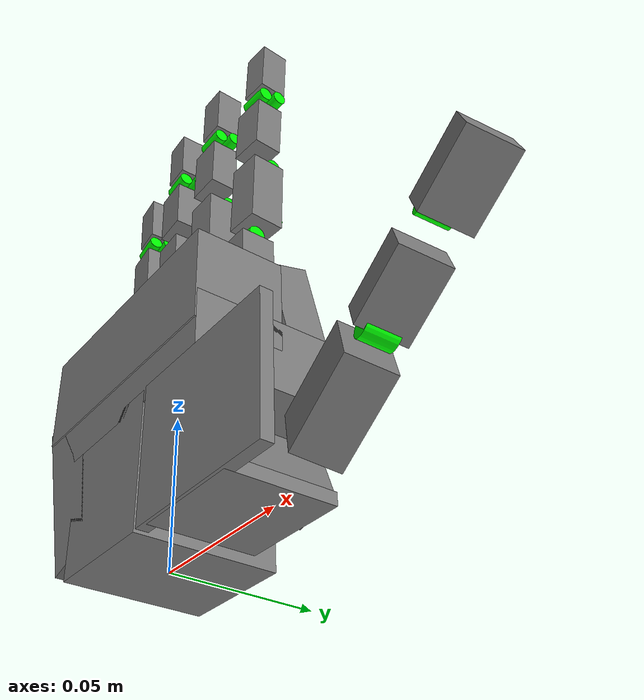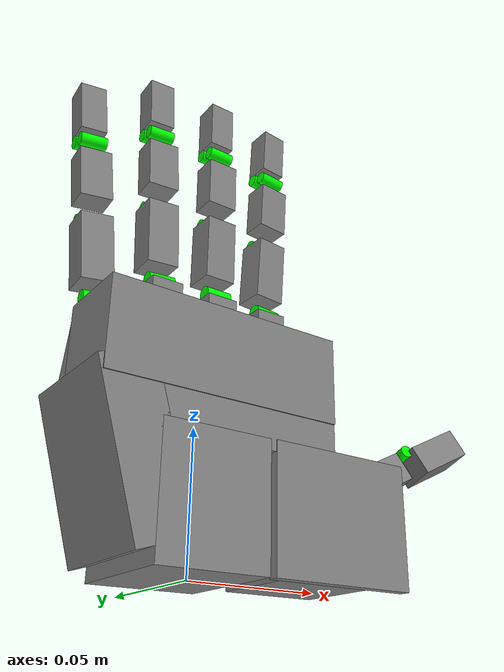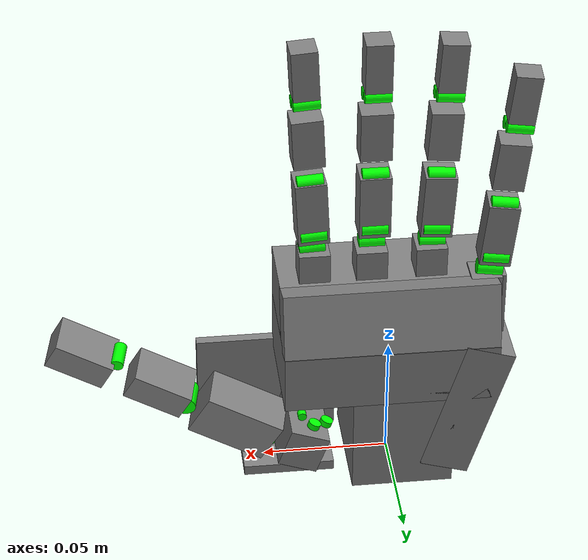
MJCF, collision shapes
<?xml version="1.0" ?>
<mujoco model="aeropiper_left_hand">

  <compiler angle="radian" meshdir="../robots/aeropiper/assets"/>

  <default>

    <default class="left_piper">

      <joint frictionloss="2.0" armature="0.005" damping="20.0"/>

      <position inheritrange="1" forcerange="-100 100" kp="100"/>

    </default>

    <default class="left_finger">

      <joint frictionloss="0" armature="0.005" damping="20.0" type="slide"/>

      <position inheritrange="1" forcerange="-10 10" kp="100"/>

    </default>

    <default class="left_visual">

      <joint frictionloss="2.0" armature="0.005" damping="20.0"/>

      <position inheritrange="1" forcerange="-100 100" kp="100"/>

      <geom group="2" type="mesh" contype="0" conaffinity="0" density="0" name="auto_geom_0"/>

    </default>

    <default class="left_collision">

      <joint frictionloss="2.0" armature="0.005" damping="20.0"/>

      <position inheritrange="1" forcerange="-100 100" kp="100"/>

      <geom group="3" type="capsule" name="auto_geom_1"/>

    </default>

    <default class="left_tetheria_rh">

      <geom group="3" friction="1.2 0.05 0.005" solref="0.005 1" solimp="0.95 0.99 0.0005" name="auto_geom_2"/>

      <joint axis="0 0 -1" damping="0.02" armature="0.001559127" frictionloss="0.02"/>

    </default>

    <default class="left_hand_visual">

      <geom group="2" friction="1.2 0.05 0.005" solref="0.005 1" solimp="0.95 0.99 0.0005" type="mesh" contype="0" conaffinity="0" density="0" material="left_white" name="auto_geom_3"/>

      <joint axis="0 0 -1" damping="0.02" armature="0.001559127" frictionloss="0.02"/>

    </default>

    <default class="left_tip">

      <geom group="3" friction="0.7 0.05 0.0002" solref="0.005 1" solimp="0.95 0.99 0.0005" size="0.01 0.012 0.016" pos="-0.0012969 -0.0335524 0.0145207" quat="0.703552 0.709596 -0.0292107 -0.0252203" type="box" rgba=".5 .5 .5 .3" name="auto_geom_4"/>

      <joint axis="0 0 -1" damping="0.02" armature="0.001559127" frictionloss="0.02"/>

    </default>

    <default class="left_thumb_tip">

      <geom group="3" friction="0.7 0.05 0.0002" solref="0.005 1" solimp="0.95 0.99 0.0005" size="0.01 0.012 0.016" pos="-0.00127744 -0.0455619 -0.0144774" quat="0.708101 0.705072 -0.0294902 -0.024426" type="box" rgba=".5 .5 .5 .3" name="auto_geom_5"/>

      <joint axis="0 0 -1" damping="0.02" armature="0.001559127" frictionloss="0.02"/>

    </default>

    <default class="left_rot">

      <geom group="3" friction="1.2 0.05 0.005" solref="0.005 1" solimp="0.95 0.99 0.0005" name="auto_geom_6"/>

      <joint axis="0 0 -1" damping="0.1" armature="0.001559127" frictionloss="0.02" range="0 1.5708"/>

      <position ctrlrange="-0.1 1.58"/>

    </default>

    <default class="left_pip">

      <geom group="3" friction="1.2 0.05 0.005" solref="0.005 1" solimp="0.95 0.99 0.0005" name="auto_geom_7"/>

      <joint axis="0 0 -1" damping="0.05" armature="0.001559127" frictionloss="0.02" range="0 1.5708"/>

      <position ctrlrange="-0.1 1.58"/>

    </default>

    <default class="left_dip">

      <geom group="3" friction="1.2 0.05 0.005" solref="0.005 1" solimp="0.95 0.99 0.0005" name="auto_geom_8"/>

      <joint axis="0 0 -1" damping="0.05" armature="0.001559127" frictionloss="0.02" range="0 1.5708"/>

      <position ctrlrange="-0.1 1.58"/>

    </default>

    <default class="left_thumb_cmc">

      <geom group="3" friction="1.2 0.05 0.005" solref="0.005 1" solimp="0.95 0.99 0.0005" name="auto_geom_9"/>

      <joint axis="0 0 -1" damping="0.02" armature="0.001559127" frictionloss="0.02" range="0 1.7453"/>

      <position ctrlrange="-0.1 1.75"/>

    </default>

    <default class="left_thumb_axl">

      <geom group="3" friction="1.2 0.05 0.005" solref="0.005 1" solimp="0.95 0.99 0.0005" name="auto_geom_10"/>

      <joint axis="0 0 -1" damping="0.02" armature="0.001559127" frictionloss="0.02" range="0 1.4"/>

      <position ctrlrange="-0.1 1.5"/>

    </default>

    <default class="left_thumb_mcp">

      <geom group="3" friction="1.2 0.05 0.005" solref="0.005 1" solimp="0.95 0.99 0.0005" name="auto_geom_11"/>

      <joint axis="0 0 -1" damping="0.02" armature="0.001559127" frictionloss="0.02" range="0 1.2217"/>

      <position ctrlrange="-0.1 1.3"/>

    </default>

    <default class="left_thumb_ipl">

      <geom group="3" friction="1.2 0.05 0.005" solref="0.005 1" solimp="0.95 0.99 0.0005" name="auto_geom_12"/>

      <joint axis="0 0 -1" damping="0.02" armature="0.001559127" frictionloss="0.02" range="0 1.2217"/>

      <position ctrlrange="-0.1 1.3"/>

    </default>

    <default class="left_cmc_spring">

      <geom group="3" friction="1.2 0.05 0.005" solref="0.005 1" solimp="0.95 0.99 0.0005" name="auto_geom_13"/>

      <joint axis="0 0 -1" damping="0.02" armature="0.001559127" frictionloss="0.02"/>

      <tendon stiffness="1897" springlength="0.013" width="0.001" rgba="0 0.5 0.5 1" group="2"/>

    </default>

    <default class="left_distal_spring">

      <geom group="3" friction="1.2 0.05 0.005" solref="0.005 1" solimp="0.95 0.99 0.0005" name="auto_geom_14"/>

      <joint axis="0 0 -1" damping="0.02" armature="0.001559127" frictionloss="0.02"/>

      <tendon stiffness="4000" springlength="0.021336" width="0.001" rgba="0.5 0.5 0 1" group="2"/>

    </default>

    <default class="left_mcp_spring">

      <geom group="3" friction="1.2 0.05 0.005" solref="0.005 1" solimp="0.95 0.99 0.0005" name="auto_geom_15"/>

      <joint axis="0 0 -1" damping="0.02" armature="0.001559127" frictionloss="0.02"/>

      <tendon stiffness="352" springlength="0.011376" width="0.001" rgba="0 0.5 0.5 1" group="2"/>

    </default>

    <default class="left_mcp_tendon">

      <geom group="3" friction="1.2 0.05 0.005" solref="0.005 1" solimp="0.95 0.99 0.0005" name="auto_geom_16"/>

      <joint axis="0 0 -1" damping="0.02" armature="0.001559127" frictionloss="0.02"/>

      <tendon width="0.001" rgba="1 0 0 1" group="2"/>

    </default>

    <default class="left_flex_tendon">

      <geom group="3" friction="1.2 0.05 0.005" solref="0.005 1" solimp="0.95 0.99 0.0005" name="auto_geom_17"/>

      <joint axis="0 0 -1" damping="0.02" armature="0.001559127" frictionloss="0.02"/>

      <tendon width="0.001" rgba="0 0 1 1" group="2"/>

    </default>

  </default>

  <asset>

    <material name="left_gray_mat" rgba="0.59 0.59 0.59 1"/>

    <material name="left_light_gray_mat" rgba="0.98 0.98 0.98 1"/>

    <material name="left_light_medium_gray_mat" rgba="0.85 0.85 0.85 1"/>

    <material name="left_dark_gray_mat" rgba="0.086 0.086 0.086 1"/>

    <material name="left_darker_gray_mat" rgba="0.14 0.14 0.14 1"/>

    <material name="left_white_mat" rgba="1 1 1 1"/>

    <material name="left_red_mat" rgba="0.82 0.15 0.15 1"/>

    <material name="left_black_mat" rgba="0 0 0 1"/>

    <material name="left_light_blue" rgba="0.79 0.82 0.93 1"/>

    <mesh file="../robots/aeropiper/assets/link2_0.obj" name="left_link2_0"/>

    <mesh file="../robots/aeropiper/assets/link2_1.obj" name="left_link2_1"/>

    <mesh file="../robots/aeropiper/assets/link2_2.obj" name="left_link2_2"/>

    <mesh file="../robots/aeropiper/assets/link2_3.obj" name="left_link2_3"/>

    <mesh file="../robots/aeropiper/assets/link2_4.obj" name="left_link2_4"/>

    <mesh file="../robots/aeropiper/assets/link2_5.obj" name="left_link2_5"/>

    <mesh file="../robots/aeropiper/assets/link2_6.obj" name="left_link2_6"/>

    <mesh file="../robots/aeropiper/assets/link2_7.obj" name="left_link2_7"/>

    <mesh file="../robots/aeropiper/assets/link2_8.obj" name="left_link2_8"/>

    <mesh file="../robots/aeropiper/assets/link2_9.obj" name="left_link2_9"/>

    <mesh file="../robots/aeropiper/assets/link2_10.obj" name="left_link2_10"/>

    <mesh file="../robots/aeropiper/assets/link2_11.obj" name="left_link2_11"/>

    <mesh file="../robots/aeropiper/assets/link2_12.obj" name="left_link2_12"/>

    <mesh file="../robots/aeropiper/assets/link2_13.obj" name="left_link2_13"/>

    <mesh file="../robots/aeropiper/assets/link2_14.obj" name="left_link2_14"/>

    <mesh file="../robots/aeropiper/assets/link2_15.obj" name="left_link2_15"/>

    <mesh file="../robots/aeropiper/assets/link2_16.obj" name="left_link2_16"/>

    <mesh file="../robots/aeropiper/assets/link2_17.obj" name="left_link2_17"/>

    <mesh file="../robots/aeropiper/assets/link2_18.obj" name="left_link2_18"/>

    <mesh file="../robots/aeropiper/assets/link2_19.obj" name="left_link2_19"/>

    <mesh file="../robots/aeropiper/assets/link2_20.obj" name="left_link2_20"/>

    <mesh file="../robots/aeropiper/assets/link2_21.obj" name="left_link2_21"/>

    <mesh file="../robots/aeropiper/assets/link2_22.obj" name="left_link2_22"/>

    <mesh file="../robots/aeropiper/assets/link2_23.obj" name="left_link2_23"/>

    <mesh file="../robots/aeropiper/assets/link2_24.obj" name="left_link2_24"/>

    <mesh file="../robots/aeropiper/assets/link2_25.obj" name="left_link2_25"/>

    <mesh file="../robots/aeropiper/assets/link2_26.obj" name="left_link2_26"/>

    <mesh file="../robots/aeropiper/assets/link2_27.obj" name="left_link2_27"/>

    <mesh file="../robots/aeropiper/assets/link2_28.obj" name="left_link2_28"/>

    <mesh file="../robots/aeropiper/assets/link2_29.obj" name="left_link2_29"/>

    <mesh file="../robots/aeropiper/assets/link2_30.obj" name="left_link2_30"/>

    <mesh file="../robots/aeropiper/assets/link2_31.obj" name="left_link2_31"/>

    <mesh file="../robots/aeropiper/assets/link3_0.obj" name="left_link3_0"/>

    <mesh file="../robots/aeropiper/assets/link3_1.obj" name="left_link3_1"/>

    <mesh file="../robots/aeropiper/assets/link3_2.obj" name="left_link3_2"/>

    <mesh file="../robots/aeropiper/assets/link3_3.obj" name="left_link3_3"/>

    <mesh file="../robots/aeropiper/assets/link3_4.obj" name="left_link3_4"/>

    <mesh file="../robots/aeropiper/assets/link3_5.obj" name="left_link3_5"/>

    <mesh file="../robots/aeropiper/assets/link3_7.obj" name="left_link3_7"/>

    <mesh file="../robots/aeropiper/assets/link3_8.obj" name="left_link3_8"/>

    <mesh file="../robots/aeropiper/assets/link3_9.obj" name="left_link3_9"/>

    <mesh file="../robots/aeropiper/assets/link3_10.obj" name="left_link3_10"/>

    <mesh file="../robots/aeropiper/assets/link3_11.obj" name="left_link3_11"/>

    <mesh file="../robots/aeropiper/assets/link3_12.obj" name="left_link3_12"/>

    <mesh file="../robots/aeropiper/assets/link3_13.obj" name="left_link3_13"/>

    <mesh file="../robots/aeropiper/assets/link3_14.obj" name="left_link3_14"/>

    <mesh file="../robots/aeropiper/assets/link3_15.obj" name="left_link3_15"/>

    <mesh file="../robots/aeropiper/assets/link3_16.obj" name="left_link3_16"/>

    <mesh file="../robots/aeropiper/assets/link3_17.obj" name="left_link3_17"/>

    <mesh file="../robots/aeropiper/assets/link3_18.obj" name="left_link3_18"/>

    <mesh file="../robots/aeropiper/assets/link3_19.obj" name="left_link3_19"/>

    <mesh file="../robots/aeropiper/assets/link3_20.obj" name="left_link3_20"/>

    <mesh file="../robots/aeropiper/assets/link3_21.obj" name="left_link3_21"/>

    <mesh file="../robots/aeropiper/assets/link3_22.obj" name="left_link3_22"/>

    <mesh file="../robots/aeropiper/assets/link3_23.obj" name="left_link3_23"/>

    <mesh file="../robots/aeropiper/assets/link3_24.obj" name="left_link3_24"/>

    <mesh file="../robots/aeropiper/assets/link3_25.obj" name="left_link3_25"/>

    <mesh file="../robots/aeropiper/assets/link3_26.obj" name="left_link3_26"/>

    <mesh file="../robots/aeropiper/assets/link3_27.obj" name="left_link3_27"/>

    <mesh file="../robots/aeropiper/assets/link3_28.obj" name="left_link3_28"/>

    <mesh file="../robots/aeropiper/assets/link4_2.obj" name="left_link4_2"/>

    <mesh file="../robots/aeropiper/assets/link4_3.obj" name="left_link4_3"/>

    <mesh file="../robots/aeropiper/assets/link4_4.obj" name="left_link4_4"/>

    <mesh file="../robots/aeropiper/assets/link4_5.obj" name="left_link4_5"/>

    <mesh file="../robots/aeropiper/assets/link4_6.obj" name="left_link4_6"/>

    <mesh file="../robots/aeropiper/assets/link5_2.obj" name="left_link5_2"/>

    <mesh file="../robots/aeropiper/assets/link5_3.obj" name="left_link5_3"/>

    <mesh file="../robots/aeropiper/assets/link5_4.obj" name="left_link5_4"/>

    <mesh file="../robots/aeropiper/assets/link5_5.obj" name="left_link5_5"/>

    <mesh file="../robots/aeropiper/assets/link5_6.obj" name="left_link5_6"/>

    <mesh file="../robots/aeropiper/assets/link5_7.obj" name="left_link5_7"/>

    <mesh file="../robots/aeropiper/assets/link5_8.obj" name="left_link5_8"/>

    <mesh name="left_base_link" file="../robots/aeropiper/assets/base_link.stl"/>

    <mesh name="left_link1" file="../robots/aeropiper/assets/link1.stl"/>

    <mesh name="left_link2" file="../robots/aeropiper/assets/link2.stl"/>

    <mesh name="left_link2_gray" file="../robots/aeropiper/assets/link2_gray.stl"/>

    <mesh name="left_link3" file="../robots/aeropiper/assets/link3.stl"/>

    <mesh name="left_link4" file="../robots/aeropiper/assets/link4.stl"/>

    <mesh name="left_link5" file="../robots/aeropiper/assets/link5.stl"/>

    <mesh file="../robots/aeropiper/assets/link6.stl" name="left_link6"/>

    <material name="left_black" rgba="0.2 0.2 0.2 1"/>

    <material name="left_gray" rgba="0.5 0.5 0.5 1"/>

    <material name="left_white" rgba="0.7 0.7 0.7 1"/>

    <mesh name="left_tetheria_mount" file="../robots/aeropiper/assets/left_palm_mount_link.STL"/>

    <mesh name="left_frame_link" content_type="model/stl" file="../robots/aeropiper/assets/base_link.STL"/>

    <mesh name="left_index_f_link" content_type="model/stl" file="../robots/aeropiper/assets/left_index_f_link.STL"/>

    <mesh name="left_index_proximal_link" content_type="model/stl" file="../robots/aeropiper/assets/left_index_proximal_link.STL"/>

    <mesh name="left_index_middle_link" content_type="model/stl" file="../robots/aeropiper/assets/left_index_middle_link.STL"/>

    <mesh name="left_index_distal_link" content_type="model/stl" file="../robots/aeropiper/assets/left_index_distal_link.STL"/>

    <mesh name="left_index_tip_link" content_type="model/stl" file="../robots/aeropiper/assets/left_index_tip_link.STL"/>

    <mesh name="left_middle_f_link" content_type="model/stl" file="../robots/aeropiper/assets/left_middle_f_link.STL"/>

    <mesh name="left_middle_proximal_link" content_type="model/stl" file="../robots/aeropiper/assets/left_middle_proximal_link.STL"/>

    <mesh name="left_middle_middle_link" content_type="model/stl" file="../robots/aeropiper/assets/left_middle_middle_link.STL"/>

    <mesh name="left_middle_distal_link" content_type="model/stl" file="../robots/aeropiper/assets/left_middle_distal_link.STL"/>

    <mesh name="left_middle_tip_link" content_type="model/stl" file="../robots/aeropiper/assets/left_middle_tip_link.STL"/>

    <mesh name="left_ring_f_link" content_type="model/stl" file="../robots/aeropiper/assets/left_ring_f_link.STL"/>

    <mesh name="left_ring_proximal_link" content_type="model/stl" file="../robots/aeropiper/assets/left_ring_proximal_link.STL"/>

    <mesh name="left_ring_middle_link" content_type="model/stl" file="../robots/aeropiper/assets/left_ring_middle_link.STL"/>

    <mesh name="left_ring_distal_link" content_type="model/stl" file="../robots/aeropiper/assets/left_ring_distal_link.STL"/>

    <mesh name="left_ring_tip_link" content_type="model/stl" file="../robots/aeropiper/assets/left_ring_tip_link.STL"/>

    <mesh name="left_pinky_f_link" content_type="model/stl" file="../robots/aeropiper/assets/left_pinky_f_link.STL"/>

    <mesh name="left_pinky_proximal_link" content_type="model/stl" file="../robots/aeropiper/assets/left_pinky_proximal_link.STL"/>

    <mesh name="left_pinky_middle_link" content_type="model/stl" file="../robots/aeropiper/assets/left_pinky_middle_link.STL"/>

    <mesh name="left_pinky_distal_link" content_type="model/stl" file="../robots/aeropiper/assets/left_pinky_distal_link.STL"/>

    <mesh name="left_pinky_tip_link" content_type="model/stl" file="../robots/aeropiper/assets/left_pinky_tip_link.STL"/>

    <mesh name="left_t_link" content_type="model/stl" file="../robots/aeropiper/assets/left_t_link.STL"/>

    <mesh name="left_thumb_mcp_link" content_type="model/stl" file="../robots/aeropiper/assets/left_thumb_mcp_link.STL"/>

    <mesh name="left_thumb_proximal_link" content_type="model/stl" file="../robots/aeropiper/assets/left_thumb_proximal_link.STL"/>

    <mesh name="left_thumb_distal_link" content_type="model/stl" file="../robots/aeropiper/assets/left_thumb_distal_link.STL"/>

    <mesh name="left_thumb_tip_link" content_type="model/stl" file="../robots/aeropiper/assets/left_thumb_tip_link.STL"/>

    <mesh name="intel_realsense_d435_left" file="../robots/aeropiper/frame/camera_d435.obj" scale="0.028 0.028 0.028"/>

  </asset>

  <worldbody>

    <body name="left_hand" pos="0 0 0" quat="1 0 0 0">

      <site name="ft_frame" pos="0 0 0" size="0.01" type="sphere" rgba="1 0 0 0" group="1"/>

      <body name="eef" pos="0 0 0" quat="1 0 0 0">

        <site name="grip_site" pos="0 -0.03 0.14" size="0.01 0.01 0.01" type="sphere" rgba="1 1 0 0" group="2"/>

        <site name="grip_site_cylinder" pos="0 -0.03 0.14" quat="-0.5 -0.5 -0.5 0.5" size="0.005 0.5" type="cylinder" rgba="0 1 0 0" group="1"/>

        <site name="ee" pos="0 -0.03 0.14" size="0.005" type="sphere" rgba="0 0 0 0" group="1"/>

        <site name="ee_x" pos="0.05 -0.03 0.14" size="0.005 0.05" type="cylinder" quat="0.707105 0 0.707108 0" rgba="1 0 0 0" group="1"/>

        <site name="ee_y" pos="0 0.02 0.14" size="0.005 0.05" type="cylinder" quat="0.707105 0.707108 0 0" rgba="0 1 0 0" group="1"/>

        <site name="ee_z" pos="0 -0.03 0.19" size="0.005 0.05" type="cylinder" rgba="0 0 1 0" group="1"/>

      </body>

      <body name="left_palm" pos="0 0 0" quat="1 0 0 0">

        <geom type="mesh" class="left_hand_visual" mesh="left_frame_link" name="auto_geom_18"/>

        <geom name="left_palm_collision_1" size="0.006 0.006 0.006" pos="0.031 0.0045 0.096" quat="0.5 -0.5 0.5 0.5" type="box"/>

        <site name="left_palm_collision_1" pos="0.031 0.017 0.076" group="3" size="0.0001"/>

        <geom name="left_palm_collision_2" size="0.006 0.006 0.006" pos="0.009 0.0045 0.096" quat="0.5 -0.5 0.5 0.5" type="box"/>

        <site name="left_palm_collision_2" pos="0.009 0.017 0.076" group="3" size="0.0001"/>

        <geom name="left_palm_collision_3" size="0.006 0.006 0.006" pos="-0.014 0.0045 0.096" quat="0.5 -0.5 0.5 0.5" type="box"/>

        <site name="left_palm_collision_3" pos="-0.014 0.017 0.076" group="3" size="0.0001"/>

        <geom name="left_palm_collision_4" size="0.006 0.006 0.006" pos="-0.036 0.0045 0.081" quat="0.5 -0.5 0.5 0.5" type="box"/>

        <site name="left_palm_collision_4" pos="-0.036 0.017 0.061" group="3" size="0.0001"/>

        <geom name="left_palm_collision_5" size="0.029 0.01 0.023" pos="-0.028 0.0015 0.034" quat="0.4206051552 0.4206051552 -0.5684112098 0.5684112098" type="box" group="3"/>

        <geom name="left_palm_collision_6" size="0.016 0.044 0.015" pos="0 -0.007 0.07" quat="0.5 -0.5 0.5 0.5" type="box" group="3"/>

        <geom name="left_palm_collision_7" size="0.0071 0.042 0.013" pos="0.002 0.014 0.0745" quat="0.7010258803 0.09253493981 -0.09253493981 0.7010258803" type="box" group="3"/>

        <geom name="left_palm_collision_8" size="0.012 0.042 0.023" pos="0.002 0.0015 0.052" quat="0.5 -0.5 0.5 0.5" type="box" group="3"/>

        <geom name="left_palm_collision_9" size="0.022 0.020 0.023" pos="-0.003 0.0015 0.022" quat="0.5 -0.5 0.5 0.5" type="box" group="3"/>

        <geom name="left_palm_collision_10" size="0.002 0.018 0.017" pos="0.041 -0.004 0.002" quat="0.5 -0.5 0.5 0.5" type="box" group="3"/>

        <geom name="left_palm_collision_11" size="0.022 0.028 0.002" pos="0.047 -0.02 0.022" quat="0.5 -0.5 0.5 0.5" type="box" group="3"/>

        <body name="left_index_f_link" pos="0.031448 0.004172 0.10003" quat="0.9995050682 -0.0004568570312 0.02617300179 0.01744660119">

          <inertial pos="0 0 0.0017" mass="0.000169697" diaginertia="1.29009e-09 1.29009e-09 7.6801e-10"/>

          <geom type="mesh" mesh="left_index_f_link" class="left_hand_visual" name="auto_geom_19"/>

          <site name="left_if_f_spring1_s1" pos="0 -0.005 0" group="4" size="0.0005"/>

          <geom name="left_if_f_spring1_g0" rgba="0 1 0 1" size="0.003 0.005" pos="0 0 0.0029" quat="0.7071067812 0 -0.7071067812 0" type="cylinder" class="left_hand_visual" group="2"/>

          <body name="left_index_proximal_link" pos="0 0 0.0034">

            <inertial pos="-6.14568e-08 0.00357858 0.0205176" quat="0.7068582183 -0.01793740554 -0.01793850554 -0.7069002183" mass="0.00600337" diaginertia="8.89988e-07 8.65278e-07 2.05352e-07"/>

            <joint name="left_index_mcp_flex" pos="0 0 0" axis="-1 -0 -0" range="0 1.5708" class="left_rot"/>

            <geom type="mesh" mesh="left_index_proximal_link" class="left_hand_visual" name="auto_geom_20"/>

            <geom size="0.006 0.006 0.013" pos="0 0.003 0.019" type="box" name="auto_geom_21"/>

            <site name="left_if_proximal_tendon0_s0" pos="0 0.011 0.0095" group="4" size="0.0001"/>

            <geom name="left_if_proximal_tendon0_g0" rgba="0 1 0 1" size="0.0025 0.005" pos="0 0.0075 0.0095" quat="0.7071067812 0 -0.7071067812 0" type="cylinder" class="left_hand_visual" group="2"/>

            <site name="left_if_proximal_tendon0_s1" pos="0 0.0063 0.0135" group="4" size="0.0001"/>

            <geom name="left_if_proximal_tendon2" rgba="0 1 0 1" size="0.0025 0.005" pos="0 0.0057 0.0173" quat="0.7071067812 0 -0.7071067812 0" type="cylinder" class="left_hand_visual" group="2"/>

            <site name="left_if_proximal_tendon0_s2" pos="0 0.0022 0.0173" group="4" size="0.0001"/>

            <geom name="left_if_proximal_tendon3" rgba="0 1 0 1" size="0.0025 0.005" pos="0 0.0057 0.0323" quat="0.7071067812 0 -0.7071067812 0" type="cylinder" class="left_hand_visual" group="2"/>

            <site name="left_if_proximal_tendon0_s3" pos="0 0.0025 0.03" group="4" size="0.0001"/>

            <site name="left_if_proximal_tendon0_s4" pos="0 0.0025 0.0333" group="4" size="0.0001"/>

            <geom name="left_if_proximal_tendon1_g0" rgba="0 1 0 1" size="0.003 0.005" pos="0 0.0018 0.043" quat="0.7071067812 0 -0.7071067812 0" type="cylinder" class="left_hand_visual" group="2"/>

            <site name="left_if_proximal_tendon1_s0" pos="0 0.0048 0.04" group="4" size="0.0001"/>

            <site name="left_if_proximal_tendon1_s1" pos="0 -0.0012 0.035" group="4" size="0.0001"/>

            <site name="left_if_proximal_spring0_s0" pos="0 -0.0012 0.011" group="4" size="0.0005"/>

            <site name="left_if_proximal_spring0_s1" pos="0 -0.0012 0.04" group="4" size="0.0005"/>

            <site name="left_if_proximal_spring1_s0" pos="0 -0.003 0.004" group="4" size="0.0005"/>

            <body name="left_index_middle_link" pos="0 0.0014554 0.043" quat="0.9999619243 -0.00872638934 0 0">

              <inertial pos="2.38785e-08 0.00110516 0.00939619" quat="0.7068326469 0.01919079041 0.01920319041 -0.7068596469" mass="0.0023759" diaginertia="1.62521e-07 1.35575e-07 7.42871e-08"/>

              <joint name="left_index_pip" pos="0 0 0" axis="-1 -0 -0" range="0 1.5708" class="left_pip"/>

              <geom type="mesh" mesh="left_index_middle_link" class="left_hand_visual" name="auto_geom_22"/>

              <geom size="0.006 0.005 0.010" pos="0 0.001 0.006" type="box" name="auto_geom_23"/>

              <site name="left_if_middle_spring0_s0" pos="0 -0.004 0.003" group="4" size="0.0005"/>

              <body name="left_index_distal_link" pos="0 -0.00036966 0.021997" quat="0.9999998599 -0.0005293499258 0 0">

                <inertial pos="-0.00184412 -0.000358323 0.0107277" quat="0.6962529814 0.1844279951 0.05006349867 -0.6918899816" mass="0.00309312" diaginertia="1.89064e-07 1.75544e-07 6.39413e-08"/>

                <joint name="left_index_dip" pos="0 0 0" axis="-1 -0 -0" range="0 1.5708" class="left_dip"/>

                <geom type="mesh" mesh="left_index_distal_link" class="left_hand_visual" name="auto_geom_24"/>

                <geom pos="0 -0.0033789 0.024944" quat="0.9999987472 0.0015828996 0 0" type="mesh" mesh="left_index_tip_link" class="left_hand_visual" name="auto_geom_25"/>

                <geom name="left_if_tip" size="0.005 0.005 0.01" pos="0 0.003 0.014" type="box"/>

                <site name="left_if_tip" pos="0 0.003 0.023" group="4"/>

                <site name="left_if_dip_tendon0_s0" pos="0 0.0086 0.003" group="4" size="0.0001"/>

                <geom name="left_if_dip_tendon0_g0" rgba="0 1 0 1" size="0.0025 0.005" pos="0 0.006 0.002" quat="0.7071067812 0 -0.7071067812 0" type="cylinder" class="left_hand_visual" group="2"/>

                <site name="left_if_dip_tendon0_s2" pos="0 0.0015 0.0075" group="4" size="0.0001"/>

                <site name="left_if_dip_tendon1_s0" pos="0 -0.0025 0.015" group="4" size="0.0001"/>

                <geom name="left_if_dip_tendon1_g0" rgba="0 1 0 1" size="0.0025 0.005" pos="0 0 0" quat="0.7071067812 0 -0.7071067812 0" type="cylinder" class="left_hand_visual" group="2"/>

                <site name="left_if_dip_tendon1_s1" pos="0 -0.0025 -0.002" group="4" size="0.0001"/>

              </body>

            </body>

          </body>

        </body>

        <body name="left_middle_f_link" pos="0.0085 0.003 0.10061">

          <inertial pos="0 0 0.0017" mass="0.000169697" diaginertia="1.29009e-09 1.29009e-09 7.6801e-10"/>

          <geom type="mesh" mesh="left_middle_f_link" class="left_hand_visual" name="auto_geom_26"/>

          <site name="left_mf_f_spring1_s1" pos="0 -0.005 0" group="4" size="0.0005"/>

          <geom name="left_mf_f_spring1_g0" rgba="0 1 0 1" size="0.003 0.005" pos="0 0 0.0029" quat="0.7071067812 0 -0.7071067812 0" type="cylinder" class="left_hand_visual" group="2"/>

          <body name="left_middle_proximal_link" pos="0 0 0.0034">

            <inertial pos="-6.14568e-08 0.00357858 0.0205176" quat="0.7068582183 -0.01793740554 -0.01793850554 -0.7069002183" mass="0.00600337" diaginertia="8.89988e-07 8.65278e-07 2.05352e-07"/>

            <joint name="left_middle_mcp_flex" pos="0 0 0" axis="-1 -0 -0" range="0 1.5708" class="left_rot"/>

            <geom type="mesh" mesh="left_middle_proximal_link" class="left_hand_visual" name="auto_geom_27"/>

            <geom size="0.006 0.006 0.013" pos="0 0.003 0.019" type="box" name="auto_geom_28"/>

            <site name="left_mf_proximal_tendon0_s0" pos="0 0.011 0.0095" group="4" size="0.0001"/>

            <geom name="left_mf_proximal_tendon0_g0" rgba="0 1 0 1" size="0.0025 0.005" pos="0 0.0075 0.0095" quat="0.7071067812 0 -0.7071067812 0" type="cylinder" class="left_hand_visual" group="2"/>

            <site name="left_mf_proximal_tendon0_s1" pos="0 0.0063 0.0135" group="4" size="0.0001"/>

            <geom name="left_mf_proximal_tendon2" rgba="0 1 0 1" size="0.0025 0.005" pos="0 0.0057 0.0173" quat="0.7071067812 0 -0.7071067812 0" type="cylinder" class="left_hand_visual" group="2"/>

            <site name="left_mf_proximal_tendon0_s2" pos="0 0.0022 0.0173" group="4" size="0.0001"/>

            <geom name="left_mf_proximal_tendon3" rgba="0 1 0 1" size="0.0025 0.005" pos="0 0.0057 0.0323" quat="0.7071067812 0 -0.7071067812 0" type="cylinder" class="left_hand_visual" group="2"/>

            <site name="left_mf_proximal_tendon0_s3" pos="0 0.0025 0.03" group="4" size="0.0001"/>

            <site name="left_mf_proximal_tendon0_s4" pos="0 0.0025 0.0333" group="4" size="0.0001"/>

            <geom name="left_mf_proximal_tendon1_g0" rgba="0 1 0 1" size="0.003 0.005" pos="0 0.0018 0.043" quat="0.7071067812 0 -0.7071067812 0" type="cylinder" class="left_hand_visual" group="2"/>

            <site name="left_mf_proximal_tendon1_s0" pos="0 0.0048 0.04" group="4" size="0.0001"/>

            <site name="left_mf_proximal_tendon1_s1" pos="0 -0.0012 0.035" group="4" size="0.0001"/>

            <site name="left_mf_proximal_spring0_s0" pos="0 -0.0012 0.011" group="4" size="0.0005"/>

            <site name="left_mf_proximal_spring0_s1" pos="0 -0.0012 0.04" group="4" size="0.0005"/>

            <site name="left_mf_proximal_spring1_s0" pos="0 -0.003 0.004" group="4" size="0.0005"/>

            <body name="left_middle_middle_link" pos="0 0.0014554 0.043" quat="0.9999619243 -0.00872638934 0 0">

              <inertial pos="2.38785e-08 0.00110516 0.00939619" quat="0.7068326469 0.01919079041 0.01920319041 -0.7068596469" mass="0.0023759" diaginertia="1.62521e-07 1.35575e-07 7.42871e-08"/>

              <joint name="left_middle_pip" pos="0 0 0" axis="-1 -0 -0" range="0 1.5708" class="left_pip"/>

              <geom type="mesh" mesh="left_middle_middle_link" class="left_hand_visual" name="auto_geom_29"/>

              <geom size="0.006 0.005 0.010" pos="0 0.001 0.006" type="box" name="auto_geom_30"/>

              <site name="left_mf_middle_spring0_s0" pos="0 -0.004 0.003" group="4" size="0.0005"/>

              <body name="left_middle_distal_link" pos="0 -0.00036966 0.021997" quat="0.9999998599 -0.0005293499258 0 0">

                <inertial pos="-0.00184412 -0.000358323 0.0107277" quat="0.6962529814 0.1844279951 0.05006349867 -0.6918899816" mass="0.00309312" diaginertia="1.89064e-07 1.75544e-07 6.39413e-08"/>

                <joint name="left_middle_dip" pos="0 0 0" axis="-1 -0 -0" range="0 1.5708" class="left_dip"/>

                <geom type="mesh" mesh="left_middle_distal_link" class="left_hand_visual" name="auto_geom_31"/>

                <geom pos="0 -0.0033789 0.024944" quat="0.9999987472 0.0015828996 0 0" type="mesh" mesh="left_middle_tip_link" class="left_hand_visual" name="auto_geom_32"/>

                <geom name="left_mf_tip" size="0.005 0.005 0.01" pos="0 0.003 0.014" type="box"/>

                <site name="left_mf_tip" pos="0 0.003 0.023" group="4"/>

                <site name="left_mf_dip_tendon0_s0" pos="0 0.0086 0.003" group="4" size="0.0001"/>

                <geom name="left_mf_dip_tendon0_g0" rgba="0 1 0 1" size="0.0025 0.005" pos="0 0.006 0.002" quat="0.7071067812 0 -0.7071067812 0" type="cylinder" class="left_hand_visual" group="2"/>

                <site name="left_mf_dip_tendon0_s2" pos="0 0.0015 0.0075" group="4" size="0.0001"/>

                <site name="left_mf_dip_tendon1_s0" pos="0 -0.0025 0.015" group="4" size="0.0001"/>

                <geom name="left_mf_dip_tendon1_g0" rgba="0 1 0 1" size="0.0025 0.005" pos="0 0 0" quat="0.7071067812 0 -0.7071067812 0" type="cylinder" class="left_hand_visual" group="2"/>

                <site name="left_mf_dip_tendon1_s1" pos="0 -0.0025 -0.002" group="4" size="0.0001"/>

              </body>

            </body>

          </body>

        </body>

        <body name="left_ring_f_link" pos="-0.014448 0.004172 0.10003" quat="0.9995050682 -0.0004568570312 -0.02617300179 -0.01744660119">

          <inertial pos="0 0 0.0017" mass="0.000169697" diaginertia="1.29009e-09 1.29009e-09 7.6801e-10"/>

          <geom type="mesh" mesh="left_ring_f_link" class="left_hand_visual" name="auto_geom_33"/>

          <site name="left_rf_f_spring1_s1" pos="0 -0.005 0" group="4" size="0.0005"/>

          <geom name="left_rf_f_spring1_g0" rgba="0 1 0 1" size="0.003 0.005" pos="0 0 0.0029" quat="0.7071067812 0 -0.7071067812 0" type="cylinder" class="left_hand_visual" group="2"/>

          <body name="left_ring_proximal_link" pos="0 0 0.0034">

            <inertial pos="-4.27735e-08 0.00357857 0.0205176" quat="0.7068792098 -0.01793830532 -0.01793830532 -0.7068792098" mass="0.00600337" diaginertia="8.89987e-07 8.65277e-07 2.05351e-07"/>

            <joint name="left_ring_mcp_flex" pos="0 0 0" axis="-1 -0 -0" range="0 1.5708" class="left_rot"/>

            <geom type="mesh" mesh="left_ring_proximal_link" class="left_hand_visual" name="auto_geom_34"/>

            <geom size="0.006 0.006 0.013" pos="0 0.003 0.019" type="box" name="auto_geom_35"/>

            <site name="left_rf_proximal_tendon0_s0" pos="0 0.011 0.0095" group="4" size="0.0001"/>

            <geom name="left_rf_proximal_tendon0_g0" rgba="0 1 0 1" size="0.0025 0.005" pos="0 0.0075 0.0095" quat="0.7071067812 0 -0.7071067812 0" type="cylinder" class="left_hand_visual" group="2"/>

            <site name="left_rf_proximal_tendon0_s1" pos="0 0.0063 0.0135" group="4" size="0.0001"/>

            <geom name="left_rf_proximal_tendon2" rgba="0 1 0 1" size="0.0025 0.005" pos="0 0.0057 0.0173" quat="0.7071067812 0 -0.7071067812 0" type="cylinder" class="left_hand_visual" group="2"/>

            <site name="left_rf_proximal_tendon0_s2" pos="0 0.0022 0.0173" group="4" size="0.0001"/>

            <geom name="left_rf_proximal_tendon3" rgba="0 1 0 1" size="0.0025 0.005" pos="0 0.0057 0.0323" quat="0.7071067812 0 -0.7071067812 0" type="cylinder" class="left_hand_visual" group="2"/>

            <site name="left_rf_proximal_tendon0_s3" pos="0 0.0025 0.03" group="4" size="0.0001"/>

            <site name="left_rf_proximal_tendon0_s4" pos="0 0.0025 0.0333" group="4" size="0.0001"/>

            <geom name="left_rf_proximal_tendon1_g0" rgba="0 1 0 1" size="0.003 0.005" pos="0 0.0018 0.043" quat="0.7071067812 0 -0.7071067812 0" type="cylinder" class="left_hand_visual" group="2"/>

            <site name="left_rf_proximal_tendon1_s0" pos="0 0.0048 0.04" group="4" size="0.0001"/>

            <site name="left_rf_proximal_tendon1_s1" pos="0 -0.0012 0.035" group="4" size="0.0001"/>

            <site name="left_rf_proximal_spring0_s0" pos="0 -0.0012 0.011" group="4" size="0.0005"/>

            <site name="left_rf_proximal_spring0_s1" pos="0 -0.0012 0.04" group="4" size="0.0005"/>

            <site name="left_rf_proximal_spring1_s0" pos="0 -0.003 0.004" group="4" size="0.0005"/>

            <body name="left_ring_middle_link" pos="0 0.0014554 0.043" quat="0.9999619243 -0.00872638934 0 0">

              <inertial pos="5.2917e-09 0.00110519 0.0093962" quat="0.7068461833 0.01918930498 0.01920200498 -0.7068461833" mass="0.00237591" diaginertia="1.62521e-07 1.35575e-07 7.42877e-08"/>

              <joint name="left_ring_pip" pos="0 0 0" axis="-1 -0 -0" range="0 1.5708" class="left_pip"/>

              <geom type="mesh" mesh="left_ring_middle_link" class="left_hand_visual" name="auto_geom_36"/>

              <geom size="0.006 0.005 0.010" pos="0 0.001 0.006" type="box" name="auto_geom_37"/>

              <site name="left_rf_middle_spring0_s0" pos="0 -0.004 0.003" group="4" size="0.0005"/>

              <body name="left_ring_distal_link" pos="0 -0.00036966 0.021997" quat="0.9999998599 -0.0005293499258 0 0">

                <inertial pos="-0.00184407 -0.000358289 0.0107282" quat="0.6962437983 0.1844219466 0.05006398549 -0.6919007995" mass="0.00309314" diaginertia="1.89076e-07 1.75558e-07 6.39409e-08"/>

                <joint name="left_ring_dip" pos="0 0 0" axis="-1 -0 -0" range="0 1.5708" class="left_dip"/>

                <geom type="mesh" mesh="left_ring_distal_link" class="left_hand_visual" name="auto_geom_38"/>

                <geom pos="0 -0.0033789 0.024944" quat="0.9999987472 0.0015828996 0 0" type="mesh" mesh="left_ring_tip_link" class="left_hand_visual" name="auto_geom_39"/>

                <geom name="left_rf_tip" size="0.005 0.005 0.01" pos="0 0.003 0.014" type="box"/>

                <site name="left_rf_tip" pos="0 0.003 0.023" group="4"/>

                <site name="left_rf_dip_tendon0_s0" pos="0 0.0086 0.003" group="4" size="0.0001"/>

                <geom name="left_rf_dip_tendon0_g0" rgba="0 1 0 1" size="0.0025 0.005" pos="0 0.006 0.002" quat="0.7071067812 0 -0.7071067812 0" type="cylinder" class="left_hand_visual" group="2"/>

                <site name="left_rf_dip_tendon0_s2" pos="0 0.0015 0.0075" group="4" size="0.0001"/>

                <site name="left_rf_dip_tendon1_s0" pos="0 -0.0025 0.015" group="4" size="0.0001"/>

                <geom name="left_rf_dip_tendon1_g0" rgba="0 1 0 1" size="0.0025 0.005" pos="0 0 0" quat="0.7071067812 0 -0.7071067812 0" type="cylinder" class="left_hand_visual" group="2"/>

                <site name="left_rf_dip_tendon1_s1" pos="0 -0.0025 -0.002" group="4" size="0.0001"/>

              </body>

            </body>

          </body>

        </body>

        <body name="left_pinky_f_link" pos="-0.036912 0.0066167 0.087021" quat="0.9980188709 -0.001829979763 -0.05230409323 -0.03491799548">

          <inertial pos="0 0 0.0017" mass="0.000169697" diaginertia="1.29009e-09 1.29009e-09 7.6801e-10"/>

          <geom type="mesh" mesh="left_pinky_f_link" class="left_hand_visual" name="auto_geom_40"/>

          <site name="left_pf_f_spring1_s1" pos="0 -0.005 0" group="4" size="0.0005"/>

          <geom name="left_pf_f_spring1_g0" rgba="0 1 0 1" size="0.003 0.005" pos="0 0 0.0029" quat="0.7071067812 0 -0.7071067812 0" type="cylinder" class="left_hand_visual" group="2"/>

          <body name="left_pinky_proximal_link" pos="0 0 0.0034">

            <inertial pos="-4.24866e-08 0.00357857 0.0205176" quat="0.7068792098 -0.01793830532 -0.01793830532 -0.7068792098" mass="0.00600337" diaginertia="8.89987e-07 8.65277e-07 2.05351e-07"/>

            <joint name="left_pinky_mcp_flex" pos="0 0 0" axis="-1 -0 -0" range="0 1.5708" class="left_rot"/>

            <geom type="mesh" mesh="left_pinky_proximal_link" class="left_hand_visual" name="auto_geom_41"/>

            <geom size="0.006 0.006 0.013" pos="0 0.003 0.019" type="box" name="auto_geom_42"/>

            <site name="left_pf_proximal_tendon0_s0" pos="0 0.011 0.0095" group="4" size="0.0001"/>

            <geom name="left_pf_proximal_tendon0_g0" rgba="0 1 0 1" size="0.0025 0.005" pos="0 0.0075 0.0095" quat="0.7071067812 0 -0.7071067812 0" type="cylinder" class="left_hand_visual" group="2"/>

            <site name="left_pf_proximal_tendon0_s1" pos="0 0.0063 0.0135" group="4" size="0.0001"/>

            <geom name="left_pf_proximal_tendon2" rgba="0 1 0 1" size="0.0025 0.005" pos="0 0.0057 0.0173" quat="0.7071067812 0 -0.7071067812 0" type="cylinder" class="left_hand_visual" group="2"/>

            <site name="left_pf_proximal_tendon0_s2" pos="0 0.0022 0.0173" group="4" size="0.0001"/>

            <geom name="left_pf_proximal_tendon3" rgba="0 1 0 1" size="0.0025 0.005" pos="0 0.0057 0.0323" quat="0.7071067812 0 -0.7071067812 0" type="cylinder" class="left_hand_visual" group="2"/>

            <site name="left_pf_proximal_tendon0_s3" pos="0 0.0025 0.0333" group="4" size="0.0001"/>

            <site name="left_pf_proximal_tendon0_s4" pos="0 0.0025 0.0333" group="4" size="0.0001"/>

            <geom name="left_pf_proximal_tendon1_g0" rgba="0 1 0 1" size="0.003 0.005" pos="0 0.0018 0.043" quat="0.7071067812 0 -0.7071067812 0" type="cylinder" class="left_hand_visual" group="2"/>

            <site name="left_pf_proximal_tendon1_s0" pos="0 0.0048 0.04" group="4" size="0.0001"/>

            <site name="left_pf_proximal_tendon1_s1" pos="0 -0.0012 0.035" group="4" size="0.0001"/>

            <site name="left_pf_proximal_spring0_s0" pos="0 -0.0012 0.011" group="4" size="0.0005"/>

            <site name="left_pf_proximal_spring0_s1" pos="0 -0.0012 0.04" group="4" size="0.0005"/>

            <site name="left_pf_proximal_spring1_s0" pos="0 -0.003 0.004" group="4" size="0.0005"/>

            <body name="left_pinky_middle_link" pos="0 0.0014554 0.043" quat="0.9999619243 -0.00872638934 0 0">

              <inertial pos="1.1729e-08 0.00110519 0.0093962" quat="0.7068461765 0.01918980479 0.01920200479 -0.7068461765" mass="0.00237591" diaginertia="1.6252e-07 1.35575e-07 7.42876e-08"/>

              <joint name="left_pinky_pip" pos="0 0 0" axis="-1 -0 -0" range="0 1.5708" class="left_pip"/>

              <geom type="mesh" mesh="left_pinky_middle_link" class="left_hand_visual" name="auto_geom_43"/>

              <geom size="0.006 0.005 0.010" pos="0 0.001 0.006" type="box" name="auto_geom_44"/>

              <site name="left_pf_middle_spring0_s0" pos="0 -0.004 0.003" group="4" size="0.0005"/>

              <body name="left_pinky_distal_link" pos="0 -0.00036966 0.021997" quat="0.9999998599 -0.0005293499258 0 0">

                <inertial pos="-0.00184407 -0.000358264 0.0107282" quat="0.6962419571 0.1844209886 0.05006329692 -0.6919029574" mass="0.00309314" diaginertia="1.89076e-07 1.75557e-07 6.3941e-08"/>

                <joint name="left_pinky_dip" pos="0 0 0" axis="-1 -0 -0" range="0 1.5708" class="left_dip"/>

                <geom type="mesh" mesh="left_pinky_distal_link" class="left_hand_visual" name="auto_geom_45"/>

                <geom pos="0 -0.0033789 0.024944" quat="0.9999987472 0.0015828996 0 0" type="mesh" mesh="left_pinky_tip_link" class="left_hand_visual" name="auto_geom_46"/>

                <geom name="left_pf_tip" size="0.005 0.005 0.01" pos="0 0.003 0.014" type="box"/>

                <site name="left_pf_tip" pos="0 0.003 0.023" group="4"/>

                <site name="left_pf_dip_tendon0_s0" pos="0 0.0086 0.003" group="4" size="0.002"/>

                <geom name="left_pf_dip_tendon0_g0" rgba="0 1 0 1" size="0.0025 0.005" pos="0 0.006 0.002" quat="0.7071067812 0 -0.7071067812 0" type="cylinder" class="left_hand_visual" group="2"/>

                <site name="left_pf_dip_tendon0_s2" pos="0 0.0015 0.0075" group="4" size="0.0001"/>

                <site name="left_pf_dip_tendon1_s0" pos="0 -0.0025 0.015" group="4" size="0.0001"/>

                <geom name="left_pf_dip_tendon1_g0" rgba="0 1 0 1" size="0.0025 0.005" pos="0 0 0" quat="0.7071067812 0 -0.7071067812 0" type="cylinder" class="left_hand_visual" group="2"/>

                <site name="left_pf_dip_tendon1_s1" pos="0 -0.0025 -0.002" group="4" size="0.0001"/>

              </body>

            </body>

          </body>

        </body>

        <body name="left_t_link" pos="0.026317 0.0175 0.02956" quat="0.5792330795 0.4055700556 0.4055720556 0.5792350795">

          <inertial pos="-0.000792597 -0.00920489 0.00837042" quat="0.9687848109 0.2319689547 -0.05649218897 -0.06674598697" mass="0.00893482" diaginertia="1.11708e-06 8.42419e-07 4.36164e-07"/>

          <joint name="left_thumb_cmc_abd" pos="0 0 0" axis="-0 1 -0" range="0 1.7453" class="left_thumb_cmc"/>

          <geom type="mesh" mesh="left_t_link" class="left_hand_visual" name="auto_geom_47"/>

          <geom name="left_th_mp_collision" size="0.015 0.008 0.008" pos="-0.01 -0.015 0.005" type="box"/>

          <site name="left_th_t_tendon0_s0" pos="0 -0.0018 -0.003" group="4" size="0.0001"/>

          <geom name="left_th_t_tendon0_g0" rgba="0 1 0 1" size="0.0025 0.0012" pos="0 -0.0018 0" quat="0.7071067812 0.7071067812 0 0" type="cylinder" class="left_hand_visual" group="2"/>

          <site name="left_th_t_tendon0_s1" pos="0.00185 -0.0018 0.00275" group="4" size="0.0001"/>

          <geom name="left_th_t_tendon0_g1" rgba="0 1 0 1" size="0.0025 0.0012" pos="0.0037 -0.0018 0.0055" quat="0.7071067812 0.7071067812 0 0" type="cylinder" class="left_hand_visual" group="2"/>

          <site name="left_th_t_tendon0_s2" pos="0.00185 -0.0018 0.0083" group="4" size="0.0001"/>

          <geom name="left_th_t_tendon0_g2" rgba="0 1 0 1" size="0.0017 0.0015" pos="0.001 -0.0004 0.0108" quat="0.7071067812 0 -0.7071067812 0" type="cylinder" class="left_hand_visual" group="2"/>

          <site name="left_th_t_tendon0_s3" pos="0.00185 -0.0018 0.0125" group="4" size="0.0001"/>

          <site name="left_th_t_tendon1_s0" pos="0 -0.0145 -0.003" group="4" size="0.0001"/>

          <geom name="left_th_t_tendon1_g0" rgba="0 1 0 1" size="0.0025 0.0012" pos="0 -0.0145 0" quat="0.7071067812 0.7071067812 0 0" type="cylinder" class="left_hand_visual" group="2"/>

          <site name="left_th_t_tendon1_s1" pos="0.00085 -0.0145 0.00345" group="4" size="0.0001"/>

          <geom name="left_th_t_tendon1_g1" rgba="0 1 0 1" size="0.0025 0.0012" pos="0.0017 -0.0145 0.0069" quat="0.7071067812 0.7071067812 0 0" type="cylinder" class="left_hand_visual" group="2"/>

          <site name="left_th_t_tendon1_s2" pos="0.00035 -0.0145 0.011" group="4" size="0.0001"/>

          <geom name="left_th_t_tendon1_g2" rgba="0 1 0 1" size="0.0025 0.0025" pos="0.0017 -0.0135 0.0203" quat="0.7071067812 0 -0.7071067812 0" type="cylinder" class="left_hand_visual" group="2"/>

          <site name="left_th_t_tendon1_s3" pos="0.0017 -0.0165 0.0203" group="4" size="0.001"/>

          <site name="left_th_t_spring0_s0" pos="-0.0038 -0.021 0.0125" group="4" size="0.001"/>

          <body name="left_thumb_mcp_link" pos="-0.0024625 -0.011988 0.019805" quat="0.9881192065 -0.05276391103 -0.05828901218 -0.1320560276">

            <inertial pos="-3.98621e-09 0.0014303 0.0147562" quat="0.7068136634 -0.02052559022 -0.02053599022 -0.7068036634" mass="0.0102694" diaginertia="1.58158e-06 1.39018e-06 6.7267e-07"/>

            <joint name="left_thumb_cmc_flex" pos="0 0 0" axis="-1 -0 -0" range="0 0.9559" class="left_thumb_axl"/>

            <geom type="mesh" mesh="left_thumb_mcp_link" class="left_hand_visual" name="auto_geom_48"/>

            <geom name="left_th_bs_collision_1" size="0.008 0.01 0.016" pos="0 0 0.014" type="box"/>

            <site name="left_th_mcp_tendon0_s0" pos="0 0.012 0.015" group="4" size="0.0001"/>

            <geom name="left_th_mcp_tendon1_g0" rgba="0 1 0 1" size="0.0025 0.0025" pos="0 0.005 0.024" quat="0.7071067812 0 -0.7071067812 0" type="cylinder" class="left_hand_visual" group="2"/>

            <site name="left_th_mcp_tendon1_s0" pos="0 0.002 0.028" group="4" size="0.002"/>

            <site name="left_th_mcp_spring0_s0" pos="0 -0.011 0.0045" group="4" size="0.001"/>

            <site name="left_th_mcp_spring1_s0" pos="0 -0.004 0.009" group="4" size="0.001"/>

            <body name="left_thumb_proximal_link" pos="0 -0.0013652 0.035982">

              <inertial pos="-9.60413e-08 0.00147723 0.0133935" quat="0.7070280932 0.01077300142 0.01078850142 -0.7070210932" mass="0.00574573" diaginertia="6.77924e-07 5.00351e-07 3.51862e-07"/>

              <joint name="left_thumb_mcp" pos="0 0 0" axis="-1 -0 -0" range="0 1.5708" class="left_thumb_mcp"/>

              <geom type="mesh" mesh="left_thumb_proximal_link" class="left_hand_visual" name="auto_geom_49"/>

              <geom name="left_th_px_collision_1" size="0.008 0.006 0.012" pos="0 0.002 0.012" type="box"/>

              <site name="left_th_proximal_spring1_s0" pos="0 -0.005 -0.0015" group="4" size="0.0005"/>

              <geom name="left_th_proximal_spring1_g0" rgba="0 1 0 1" size="0.0045 0.005" pos="0 0 0" quat="0.7071067812 0 -0.7071067812 0" type="cylinder" class="left_hand_visual" group="2"/>

              <site name="left_th_proximal_spring1_s1" pos="0 -0.005 0.006" group="4" size="0.0005"/>

              <body name="left_thumb_distal_link" pos="0 -0.00052357 0.029995">

                <inertial pos="-0.00113926 0.00130909 0.0133464" quat="0.6986657363 0.1400079472 0.05132118063 -0.6997357359" mass="0.00692863" diaginertia="6.65186e-07 5.66522e-07 2.78338e-07"/>

                <joint name="left_thumb_ip" pos="0 0 0" axis="-1 -0 -0" range="0 1.5708" class="left_thumb_ipl"/>

                <geom type="mesh" mesh="left_thumb_distal_link" class="left_hand_visual" name="auto_geom_50"/>

                <geom pos="0 -0.0024685 0.029987" quat="0.9999824413 -0.005925972615 0 0" type="mesh" mesh="left_thumb_tip_link" class="left_hand_visual" name="auto_geom_51"/>

                <geom name="left_th_tip" size="0.008 0.006 0.012" pos="0 0.002 0.015" type="box"/>

                <site name="left_th_tip" pos="0 0.005 0.027" group="4"/>

                <site name="left_th_tendon1_ip_s0" pos="0 0.0106 0.002" group="4" size="0.001"/>

                <geom name="left_th_tendon1_ip_g0" rgba="0 1 0 1" size="0.0025 0.005" pos="0 0.008 0.002" quat="0.7071067812 0 -0.7071067812 0" type="cylinder" class="left_hand_visual" group="2"/>

                <site name="left_th_tendon1_ip_s1" pos="0 0.0003 0.0115" group="4" size="0.0001"/>

              </body>

            </body>

          </body>

        </body>

      </body>

    </body>

  </worldbody>

  <equality>

    <joint joint1="left_index_pip" joint2="left_index_dip"/>

    <joint joint1="left_middle_pip" joint2="left_middle_dip"/>

    <joint joint1="left_ring_pip" joint2="left_ring_dip"/>

    <joint joint1="left_pinky_pip" joint2="left_pinky_dip"/>

    <joint joint1="left_thumb_mcp" joint2="left_thumb_ip"/>

  </equality>

  <actuator>

    <position name="left_thumb_cmc_abd_drive" joint="left_thumb_cmc_abd" ctrlrange="0.0 1.7453" kp="1.0" forcerange="-20 20" forcelimited="true"/>
    <position name="left_thumb_cmc_flex_drive" joint="left_thumb_cmc_flex" ctrlrange="0.0 1.5" kp="2.0" forcerange="-20 20" forcelimited="true"/>
    <position name="left_thumb_mcp_drive" joint="left_thumb_mcp" ctrlrange="0.0 1.5708" kp="2.0" forcerange="-20 20" forcelimited="true"/>
    <position name="left_index_mcp_flex_drive" joint="left_index_mcp_flex" ctrlrange="0.0 1.5708" kp="2.0" forcerange="-20 20" forcelimited="true"/>
    <position name="left_middle_mcp_flex_drive" joint="left_middle_mcp_flex" ctrlrange="0.0 1.5708" kp="2.0" forcerange="-20 20" forcelimited="true"/>
    <position name="left_ring_mcp_flex_drive" joint="left_ring_mcp_flex" ctrlrange="0.0 1.5708" kp="2.0" forcerange="-20 20" forcelimited="true"/>
    <position name="left_pinky_mcp_flex_drive" joint="left_pinky_mcp_flex" ctrlrange="0.0 1.5708" kp="2.0" forcerange="-20 20" forcelimited="true"/>
  </actuator>

  <sensor>

    <force name="force_ee" site="ft_frame"/>

    <torque name="torque_ee" site="ft_frame"/>

  </sensor>

</mujoco>
